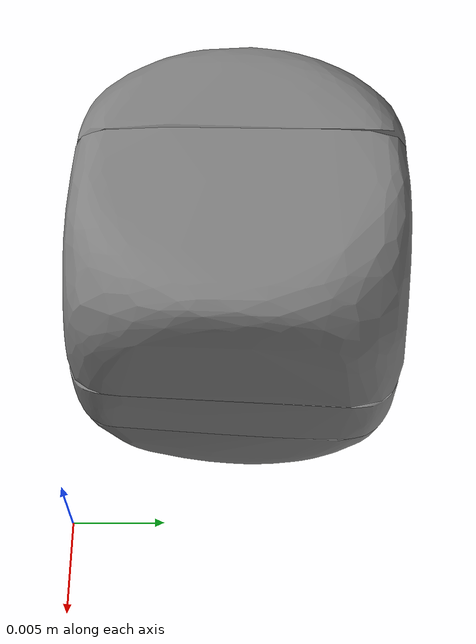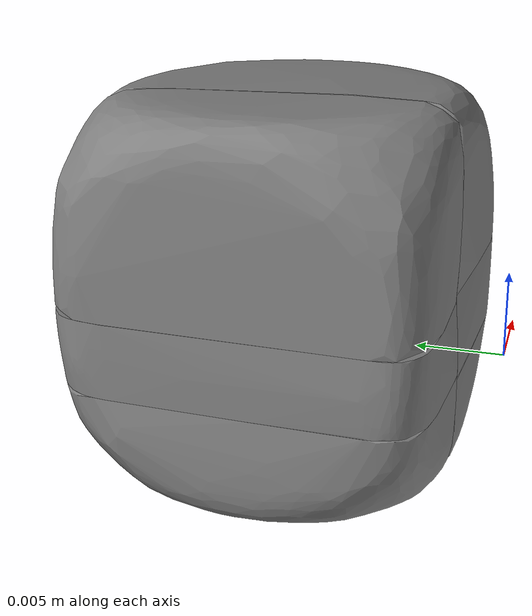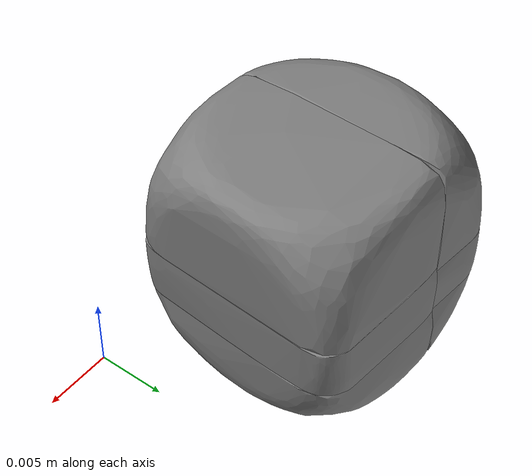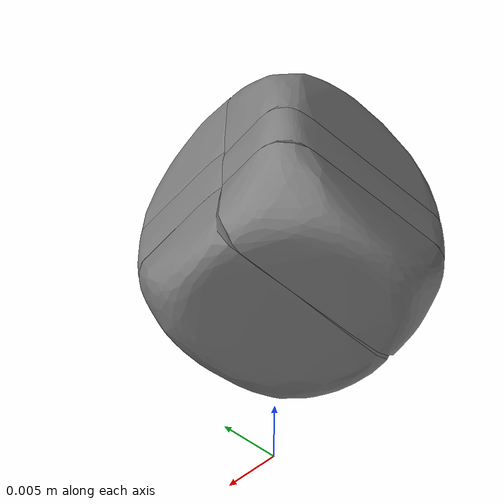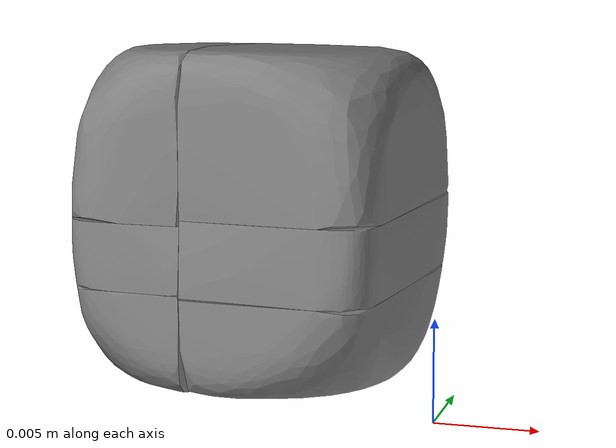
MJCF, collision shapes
<mujoco model="ycb_062_dice">
  <compiler meshdir="meshes" texturedir="meshes" angle="radian"/>
  <default>
    <default class="visual"><geom contype="0" conaffinity="0" group="2" density="0"/></default>
    <default class="collision"><geom group="3"/></default>
  </default>
  <asset>
    <texture name="ycb_062_dice_tex" type="2d" file="ycb_062_dice_texture.png"/>
    <material name="ycb_062_dice_mat" texture="ycb_062_dice_tex" specular="0.2" shininess="0.3"/>
    <mesh name="ycb_062_dice_visual" file="ycb_062_dice_visual.obj"/>
    <mesh name="ycb_062_dice_hull0" file="ycb_062_dice_hull0.obj"/>
    <mesh name="ycb_062_dice_hull1" file="ycb_062_dice_hull1.obj"/>
    <mesh name="ycb_062_dice_hull2" file="ycb_062_dice_hull2.obj"/>
    <mesh name="ycb_062_dice_hull3" file="ycb_062_dice_hull3.obj"/>
    <mesh name="ycb_062_dice_hull4" file="ycb_062_dice_hull4.obj"/>
    <mesh name="ycb_062_dice_hull5" file="ycb_062_dice_hull5.obj"/>
  </asset>
  <worldbody>
    <body name="object" pos="0 0 0">
      <freejoint name="object_free"/>
      <geom type="mesh" mesh="ycb_062_dice_visual" material="ycb_062_dice_mat" class="visual"/>
      <geom type="mesh" mesh="ycb_062_dice_hull0" class="collision"/>
      <geom type="mesh" mesh="ycb_062_dice_hull1" class="collision"/>
      <geom type="mesh" mesh="ycb_062_dice_hull2" class="collision"/>
      <geom type="mesh" mesh="ycb_062_dice_hull3" class="collision"/>
      <geom type="mesh" mesh="ycb_062_dice_hull4" class="collision"/>
      <geom type="mesh" mesh="ycb_062_dice_hull5" class="collision"/>
    </body>
  </worldbody>
</mujoco>
